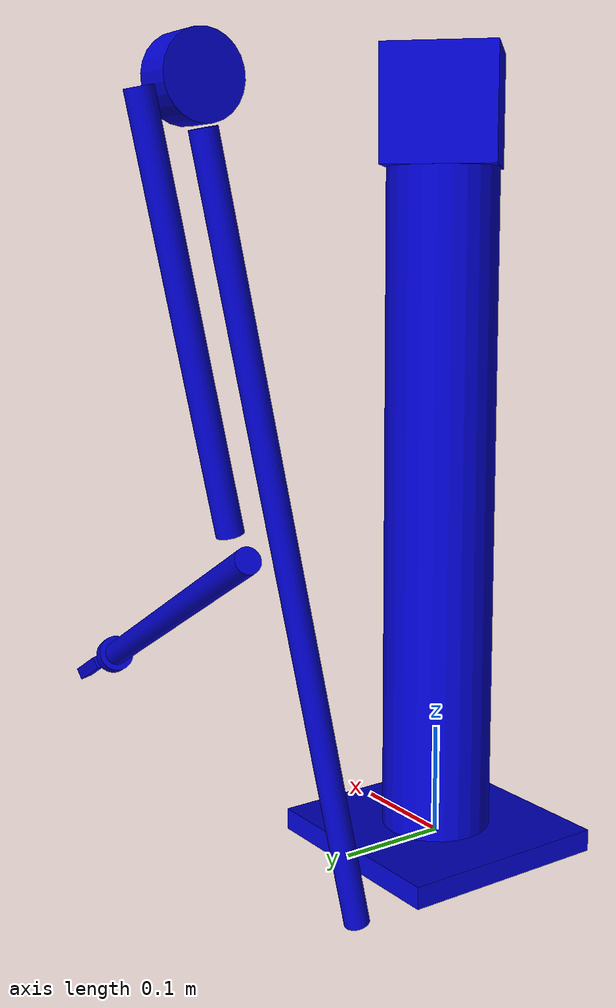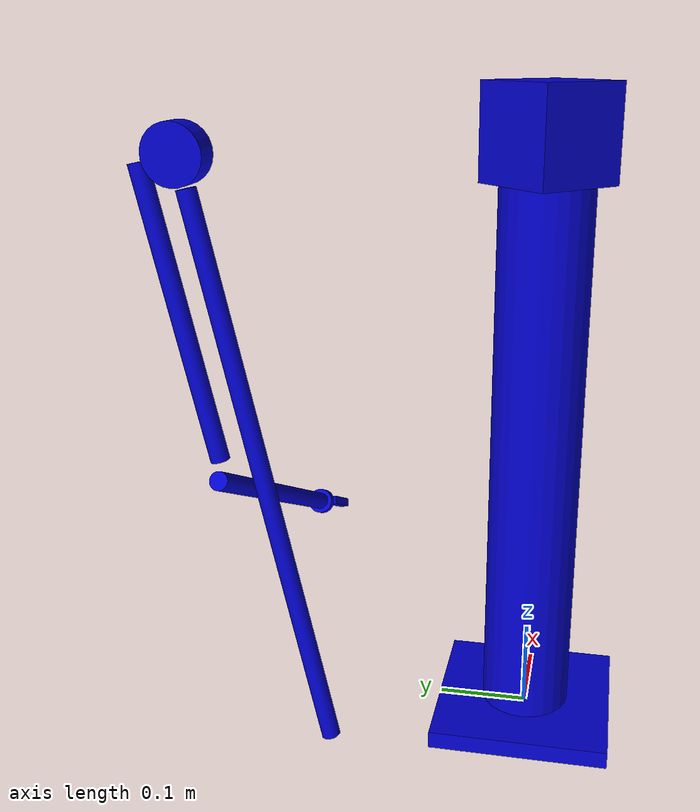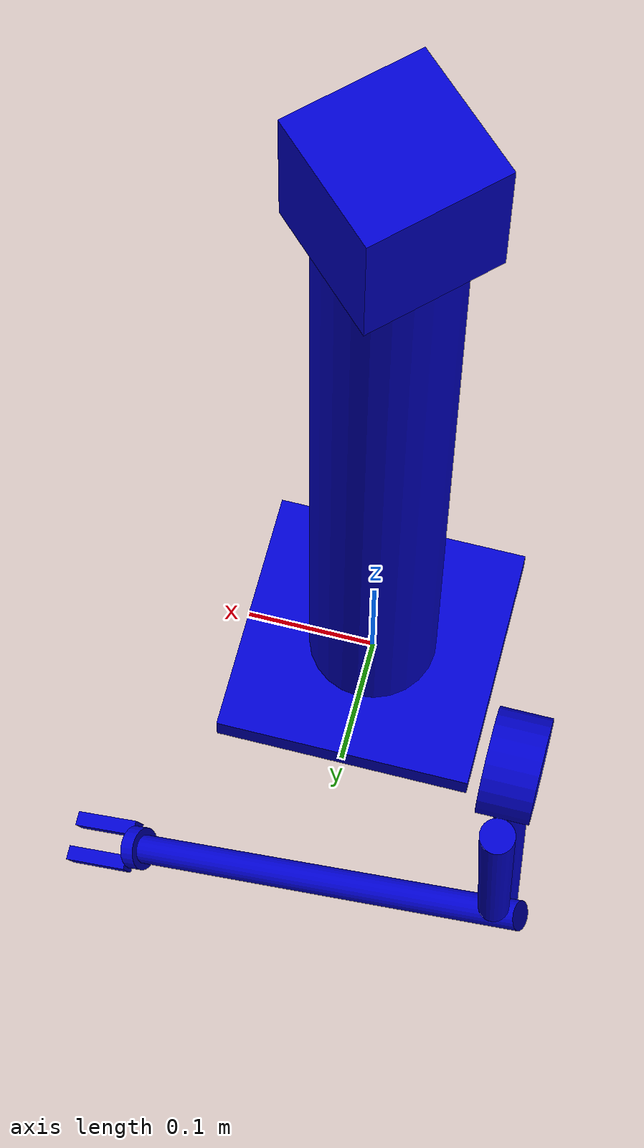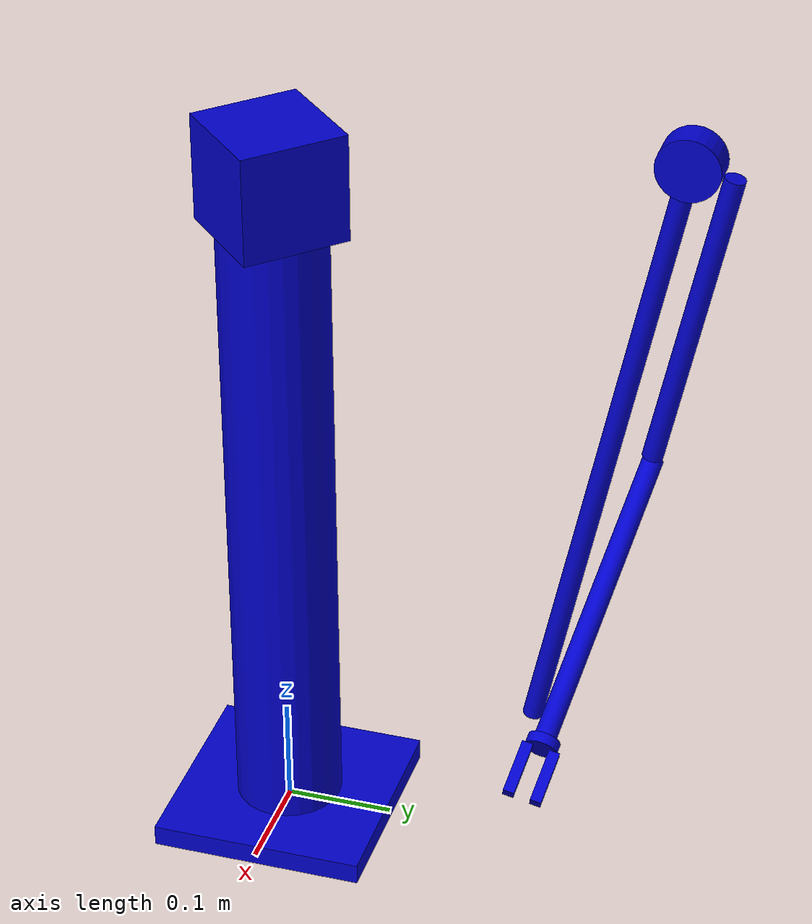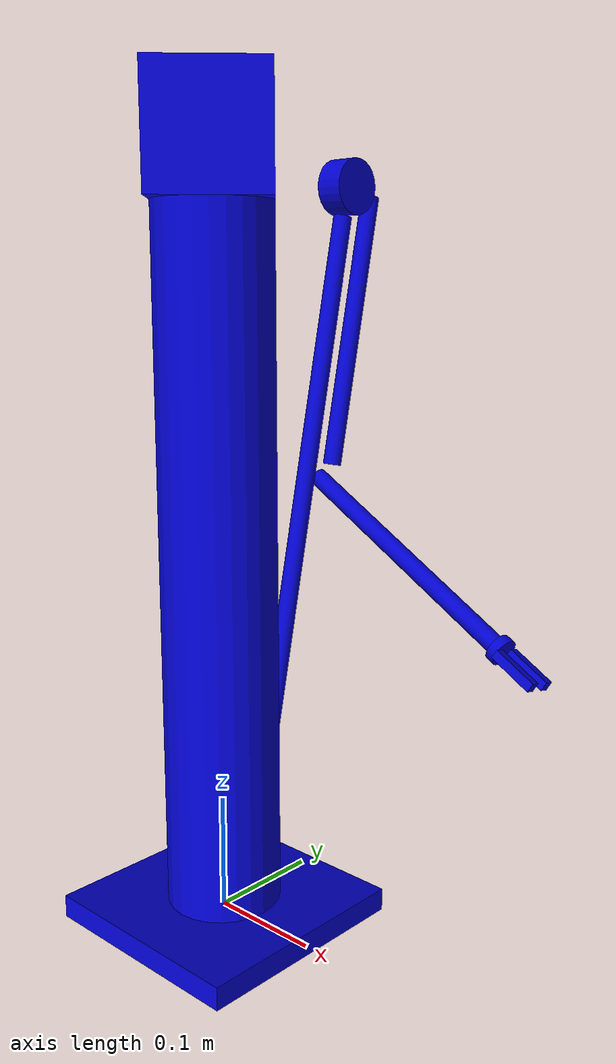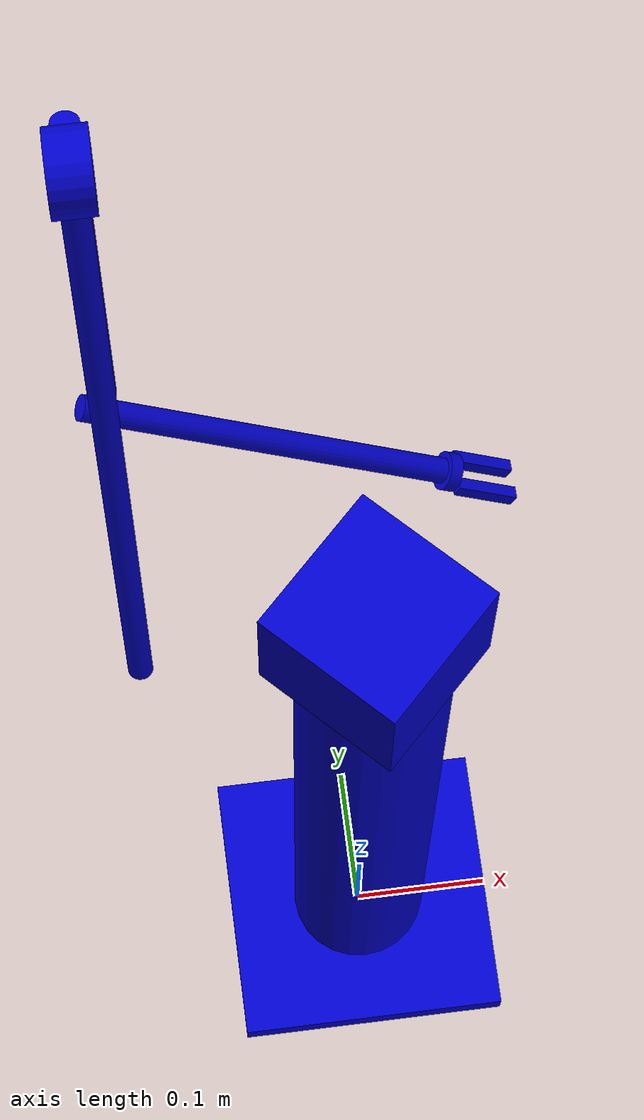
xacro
<?xml version="1.0" ?>
<robot name="castor" xmlns:xacro="http://www.ros.org/wiki/xacro">
<!-- BGN - Include -->
<xacro:include filename="$(find castor2_description)/urdf/links_joints.xacro" />
<xacro:include filename="$(find castor2_description)/urdf/parameters.xacro" />
<!-- END - Include -->

<!-- BGN - Robot description -->

<!-- BGN - head -->
<link name="world">
</link>
  <joint name="world" type="fixed">
     <parent link="world"/>
     <child link="base_link"/>
   </joint>

<m_link_box name="base_link"
    origin_xyz="0 0 0" origin_rpy="0 0 0"
    size="0.2 0.2 ${alto0}"
    mass="1231"
    ixx="170.667" ixy="0" ixz="0"
    iyy="170.667" iyz="0"
    izz="170.667"/>

<m_joint name="neckJ" type="revolute"
    axis_xyz="0 0 1"
    origin_xyz="0 0 ${alto0/2}" origin_rpy="0 0 0"
    parent="base_link" child="neck"
    limit_e="3" limit_l="-3.14" limit_u="3.14" limit_v="0.5" />

<m_link_cylinder name="neck"
    origin_xyz="0 0 ${alto1/2}" origin_rpy="0 0 0"
    radius="0.05" length="${alto1}"/>

<m_joint name="neck_head" type="revolute"
    axis_xyz="0 0 1"
    origin_xyz="0 0 ${alto1}" origin_rpy="0 0 0"
    parent="neck" child="head"
    limit_e="3" limit_l="0" limit_u="0" limit_v="0.5" />

<m_link_box name="head"
    origin_xyz="0 0 ${alto2/2}" origin_rpy="0 0 ${radians(45)}"
    size="0.1 0.1 ${alto2}"
    mass="0.1"
    ixx="0.03" ixy="0" ixz="0"
    iyy="0.03" iyz="0"
    izz="0.03"/>
<!-- END - head  -->

<!-- BGN - arm1  -->
<m_joint name="pasive_j" type="revolute"
    axis_xyz="1 0 0"
    origin_xyz="-0.15 0.2 0.03" origin_rpy="${-radians(12)} 0 0"
    parent="base_link" child="pasive"
    limit_e="3" limit_l="${radians(0)}" limit_u="${radians(0)}" limit_v="0.5" />

<m_link_cylinder name="pasive"
    origin_xyz="0 0 ${L1/2}" origin_rpy="0 0 0"
    radius="0.01" length="${L1}"/>

<m_joint name="shoulder_pitch" type="revolute"
    axis_xyz="1 0 0"
    origin_xyz="0 0 ${L1+(L2+0.002)}" origin_rpy="0 0 0"
    parent="pasive" child="shoulderP"
    limit_e="3" limit_l="0" limit_u="2.3" limit_v="0.5" />

<m_link_cylinder name="shoulderP"
    origin_xyz="0 0 0" origin_rpy="${radians(90)} 0 ${radians(90)}"
    radius="${L2}" length="${L2}"/>

<m_joint name="shoulder_roll" type="revolute"
    axis_xyz="0 1 0"
    origin_xyz="0 ${L2+0.01} 0" origin_rpy="0 ${radians(180)} 0"
    parent="shoulderP" child="shoulderR"
    limit_e="3" limit_l="-1.5" limit_u="0.1" limit_v="0.5" />

<m_link_cylinder name="shoulderR"
    origin_xyz="0 0 ${L3/2}" origin_rpy="0 0 0"
    radius="0.01" length="${L3}"/>

<m_joint name="elbowJ" type="revolute"
    axis_xyz="0 1 0"
    origin_xyz="0 0 ${L3+0.025}" origin_rpy="0 0 0"
    parent="shoulderR" child="elbow"
    limit_e="3" limit_l="-2" limit_u="-0.18" limit_v="0.5" />

<m_link_cylinder name="elbow"
    origin_xyz="0 0 ${(L4/2)-0.02}" origin_rpy="0 0 0"
    radius="0.01" length="${L4}"/>

<m_joint name="wristJ" type="continuous"
    axis_xyz="0 0 1"
    origin_xyz="0 0 ${(L4)-0.02+(0.01/2)}" origin_rpy="0 0 0"
    parent="elbow" child="wrist"
    limit_e="3" limit_l="0" limit_u="0" limit_v="0.5" />

<m_link_cylinder name="wrist"
    origin_xyz="0 0 0" origin_rpy="0 0 0"
    radius="0.015" length="0.01"/>
<!-- END - arm1  -->

<!-- BGN - hand  -->
<m_joint name="finger1J" type="prismatic"
    axis_xyz="0 1 0"
    origin_xyz="0 0 ${0.05/2+0.005}" origin_rpy="0 0 0"
    parent="wrist" child="finger1"
    limit_e="3" limit_l="0.005" limit_u="0.02" limit_v="0.5" />

<m_link_box name="finger1"
    origin_xyz="0 0 0" origin_rpy="0 0 0"
    size="0.01 0.01 0.05"
    mass="0.1"
    ixx="0.03" ixy="0" ixz="0"
    iyy="0.03" iyz="0"
    izz="0.03"/>

<m_joint name="finger2J" type="prismatic"
    axis_xyz="0 -1 0"
    origin_xyz="0 0 ${0.05/2+0.005}" origin_rpy="0 0 0"
    parent="wrist" child="finger2"
    limit_e="3" limit_l="0.005" limit_u="0.02" limit_v="0.5" />

<m_link_box name="finger2"
    origin_xyz="0 0 0" origin_rpy="0 0 0"
    size="0.01 0.01 0.05"
    mass="0.1"
    ixx="0.03" ixy="0" ixz="0"
    iyy="0.03" iyz="0"
    izz="0.03"/>

<joint name="katana_gripper_tool_frame_joint" type="fixed">
    <parent link="wrist"/>
    <child link="gripper_tool_frame" />
    <origin xyz="0 0 0.05" rpy="0 0 0"/>
</joint>

<link name="gripper_tool_frame">
<!-- This is the coordinate system of the tool (this is the position
used in IK etc., relative to the base frame); there is no actual
arm part attached to this link -->
</link>
<!-- END - hand  -->

<!-- END - Robot description -->

    <gazebo>
        <plugin name="gazebo_ros_control" filename="libgazebo_ros_control.so">
            <robotNamespace>/castor</robotNamespace>
            <robotSimType>gazebo_ros_control/DefaultRobotHWSim</robotSimType>
            <legacyModeNS>true</legacyModeNS>
        </plugin>
    </gazebo>

</robot>

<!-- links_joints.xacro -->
<robot xmlns:xacro="http://www.ros.org/wiki/xacro">
      <material name="blue">
        <color rgba="0 0 0.8 1"/>
      </material>
  <xacro:macro name="m_joint" params="name type axis_xyz origin_rpy origin_xyz parent child limit_e limit_l limit_u limit_v">
    <joint name="${name}" type="${type}">
      <axis xyz="${axis_xyz}" />
      <limit effort="${limit_e}" lower="${limit_l}" upper="${limit_u}" velocity="${limit_v}" />
      <origin rpy="${origin_rpy}" xyz="${origin_xyz}" />
      <parent link="${parent}" />
      <child link="${child}" />
    </joint>
    <safety_controller k_position="100" k_velocity="1.5" soft_lower_limit="-2.857" soft_upper_limit="2.857"/>
    <transmission name="trans_${name}">
      <type>transmission_interface/SimpleTransmission</type>
      <joint name="${name}">
        <hardwareInterface>hardware_interface/EffortJointInterface</hardwareInterface>
      </joint>
      <actuator name="motor_${name}">
        <hardwareInterface>hardware_interface/EffortJointInterface</hardwareInterface>
        <mechanicalReduction>1</mechanicalReduction>
      </actuator>
    </transmission>
  </xacro:macro>

  <xacro:macro name="m_link_cylinder" params="name origin_xyz origin_rpy radius length">
    <link name="${name}">

      <visual>
        <origin rpy="${origin_rpy}" xyz="${origin_xyz}" />
        <geometry>
          <cylinder radius="${radius}" length="${length}" />
        </geometry>
        <material name="blue"/>
      </visual>

      <collision>
        <origin rpy="${origin_rpy}" xyz="${origin_xyz}" />
        <geometry>
          <cylinder radius="${radius}" length="${length}" />
        </geometry>
      </collision>
      <inertial>
        <mass value="0.1"/>
        <inertia ixx="0.03" iyy="0.03" izz="0.03" ixy="0.0" ixz="0.0" iyz="0.0"/>
      </inertial>
    </link>
  </xacro:macro>

  <xacro:macro name="m_link_box" params="name origin_xyz origin_rpy size mass ixx ixy ixz iyy iyz izz">
    <link name="${name}">
     <collision>
        <origin rpy="${origin_rpy}" xyz="${origin_xyz}" />
        <geometry>
          <box size="${size}" />
        </geometry>
      </collision>

      <visual>
        <origin rpy="${origin_rpy}" xyz="${origin_xyz}" />
        <geometry>
          <box size="${size}" />
        </geometry>
        <material name="blue"/>
      </visual>
      <inertial>
        <mass value="${mass}" />
        <origin rpy="${origin_rpy}" xyz="${origin_xyz}" />
        <inertia ixx="${ixx}" ixy="${ixy}" ixz="${ixz}" iyy="${iyy}" iyz="${iyz}" izz="${izz}" />
      </inertial>
    </link>
  </xacro:macro>

</robot>

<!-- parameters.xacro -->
<robot xmlns:xacro="http://www.ros.org/wiki/xacro">
  <xacro:property name="alto0" value="0.02" />
  <xacro:property name="alto1" value="0.6" />
  <xacro:property name="alto2" value="0.1" />
  <xacro:property name="L1" value="0.6" />
  <xacro:property name="L2" value="0.03" />
  <xacro:property name="L3" value="0.3" />
  <xacro:property name="L4" value="0.3" />
  <xacro:property name="angF" value="20" />
</robot>
